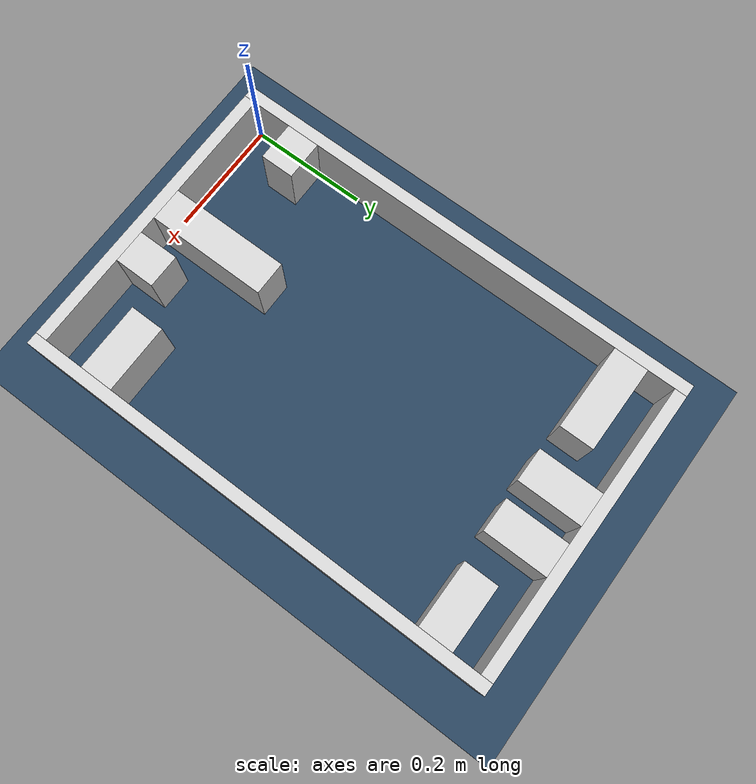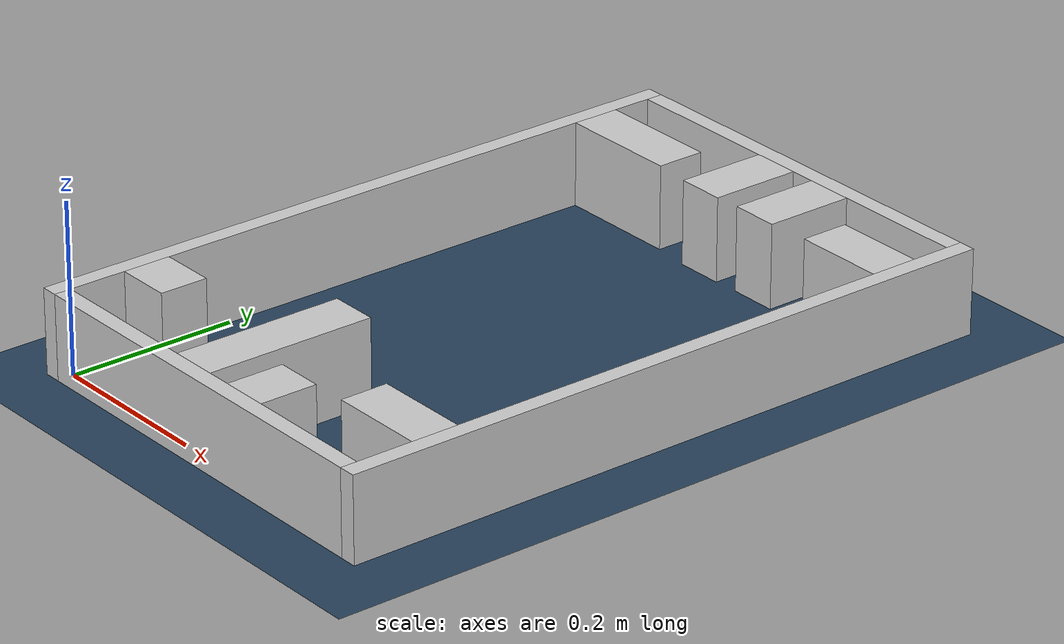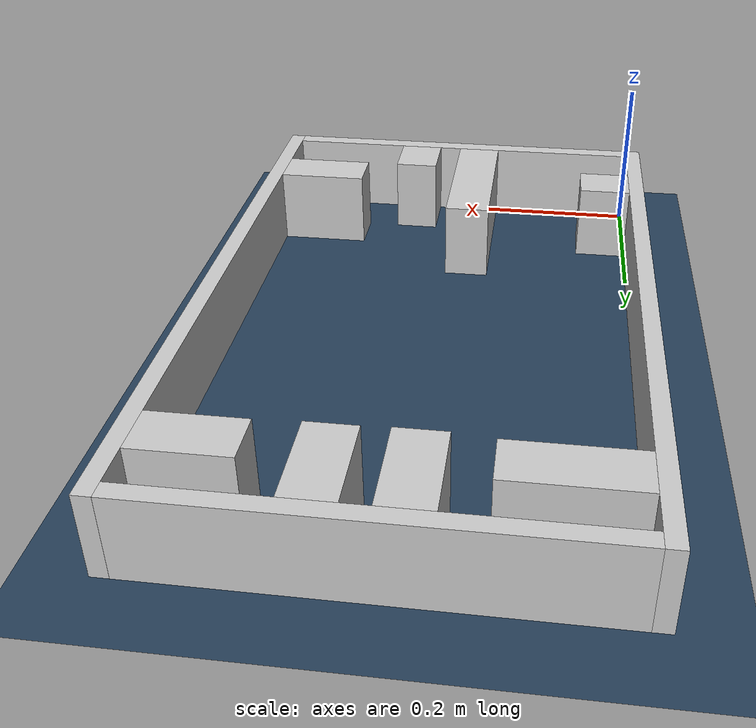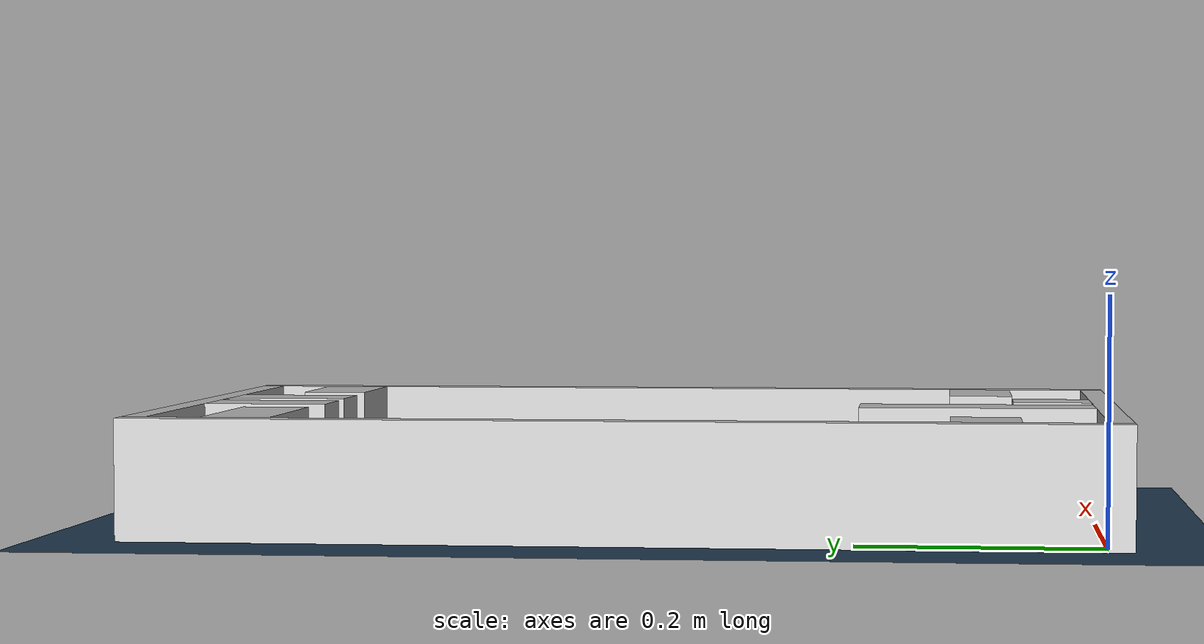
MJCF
<?xml version="1.0" ?>
<mujoco model="generated_real_template">
  <compiler angle="degree"/>
  <option timestep="0.002" integrator="implicitfast" iterations="100" cone="elliptic"/>
  <default>
    <geom density="1"/>
  </default>
  <asset>
    <texture builtin="gradient" height="3072" rgb1="0.3 0.5 0.7" rgb2="0 0 0" type="skybox" width="512"/>
    <texture builtin="checker" height="300" mark="edge" markrgb="0.8 0.8 0.8" name="groundplane" rgb1="0.2 0.3 0.4" rgb2="0.1 0.2 0.3" type="2d" width="300"/>
    <material name="groundplane" reflectance="0.2" texrepeat="5 5" texture="groundplane" texuniform="true"/>
  </asset>
  <worldbody>
    <light dir="0 0 -1" directional="true" pos="0 0 1.5"/>
    <geom name="floor" type="plane" condim="4" friction="0.5 0.005 0.001" material="groundplane" size="0 0 0.05"/>
    <body name="walls">
      <geom name="wall_boundary_left" type="box" condim="4" friction="1.0 0.005 0.0001" rgba="0.8 0.8 0.8 1" pos="-0.010000 0.387500 0.050000" euler="0 0 0.000000" size="0.010000 0.407500 0.050000"/>
      <geom name="wall_boundary_right" type="box" condim="4" friction="1.0 0.005 0.0001" rgba="0.8 0.8 0.8 1" pos="0.500000 0.387500 0.050000" euler="0 0 0.000000" size="0.010000 0.407500 0.050000"/>
      <geom name="wall_boundary_bottom" type="box" condim="4" friction="1.0 0.005 0.0001" rgba="0.8 0.8 0.8 1" pos="0.245000 -0.010000 0.050000" euler="0 0 0.000000" size="0.245000 0.010000 0.050000"/>
      <geom name="wall_boundary_top" type="box" condim="4" friction="1.0 0.005 0.0001" rgba="0.8 0.8 0.8 1" pos="0.245000 0.785000 0.050000" euler="0 0 0.000000" size="0.245000 0.010000 0.050000"/>
      <geom name="wall_inner_1_1" type="box" condim="4" friction="1.0 0.005 0.0001" rgba="0.8 0.8 0.8 1" pos="0.217778 0.101055 0.050000" euler="0 0 90.000000" size="0.101055 0.028500 0.050000"/>
      <geom name="wall_inner_1_2" type="box" condim="4" friction="1.0 0.005 0.0001" rgba="0.8 0.8 0.8 1" pos="0.217778 0.721262 0.050000" euler="0 0 90.000000" size="0.053738 0.028500 0.050000"/>
      <geom name="wall_inner_2_1" type="box" condim="4" friction="1.0 0.005 0.0001" rgba="0.8 0.8 0.8 1" pos="0.072781 0.700773 0.050000" euler="0 0 0.000000" size="0.072781 0.028500 0.050000"/>
      <geom name="wall_inner_2_2" type="box" condim="4" friction="1.0 0.005 0.0001" rgba="0.8 0.8 0.8 1" pos="0.435570 0.700773 0.050000" euler="0 0 0.000000" size="0.054430 0.028500 0.050000"/>
      <geom name="wall_inner_3_1" type="box" condim="4" friction="1.0 0.005 0.0001" rgba="0.8 0.8 0.8 1" pos="0.304199 0.034117 0.050000" euler="0 0 90.000000" size="0.034117 0.028500 0.050000"/>
      <geom name="wall_inner_3_2" type="box" condim="4" friction="1.0 0.005 0.0001" rgba="0.8 0.8 0.8 1" pos="0.304199 0.722155 0.050000" euler="0 0 90.000000" size="0.052845 0.028500 0.050000"/>
      <geom name="wall_inner_4_1" type="box" condim="4" friction="1.0 0.005 0.0001" rgba="0.8 0.8 0.8 1" pos="0.033254 0.095974 0.050000" euler="0 0 0.000000" size="0.033254 0.028500 0.050000"/>
      <geom name="wall_inner_4_2" type="box" condim="4" friction="1.0 0.005 0.0001" rgba="0.8 0.8 0.8 1" pos="0.432432 0.095974 0.050000" euler="0 0 0.000000" size="0.057568 0.028500 0.050000"/>
    </body>
  </worldbody>
</mujoco>
